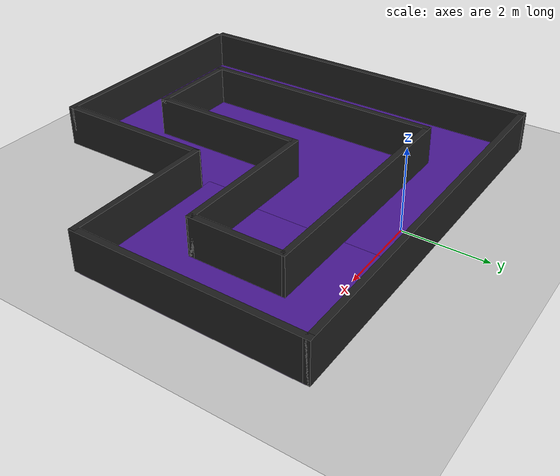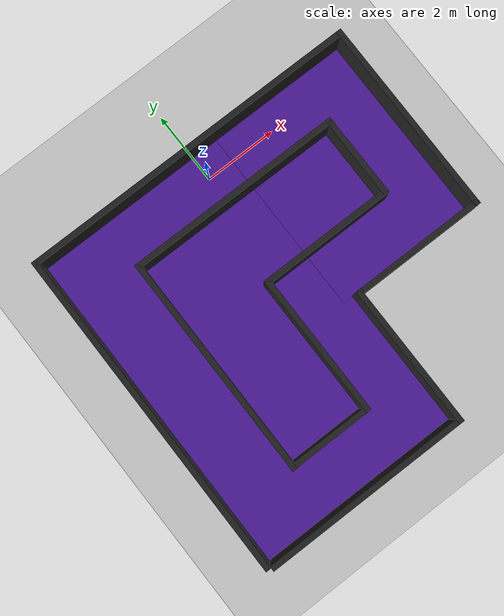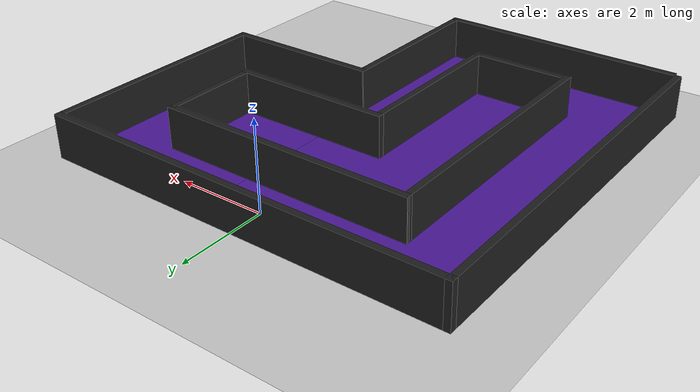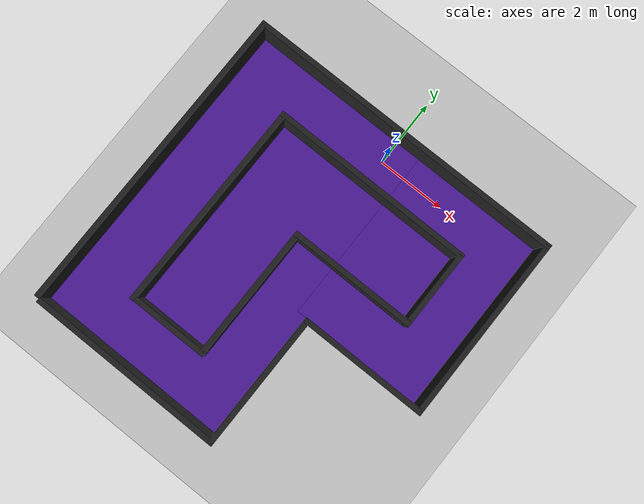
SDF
<sdf version="1.4">
 <world name="default">
  <light type="directional" name="sun">
   <cast_shadows>false</cast_shadows>
   <pose>-6 2 5 -0.5 -0.5 0</pose>
   <diffuse>0.8 0.8 0.8 1</diffuse>
   <specular>0.9 0.9 0.9 1</specular>
   <attenuation>
    <range>1000</range>
    <constant>0.9</constant>
    <linear>0.01</linear>
    <quadratic>0.001</quadratic>
   </attenuation>
   <direction>0 0 -1</direction>
  </light>
  <light type="directional" name="sun2">
   <cast_shadows>false</cast_shadows>
   <pose>-3 -7 5 0.5 0.5 0</pose>
   <diffuse>0.8 0.8 0.8 1</diffuse>
   <specular>0.9 0.9 0.9 1</specular>
   <attenuation>
    <range>1000</range>
    <constant>0.9</constant>
    <linear>0.01</linear>
    <quadratic>0.001</quadratic>
   </attenuation>
   <direction>0 0 -1</direction>
  </light>
  <model name="ground_plane">
   <static>1</static>
   <link name="link">
    <collision name="collision">
     <geometry><plane><normal>0 0 1</normal><size>100 100</size></plane></geometry>
     <surface><friction><ode><mu>100</mu><mu2>50</mu2></ode></friction></surface>
    </collision>
    <visual name="visual">
     <cast_shadows>0</cast_shadows>
     <geometry><plane><normal>0 0 1</normal><size>100 100</size></plane></geometry>
     <material>
      <script><uri>file://media/materials/scripts/gazebo.material</uri><name>Gazebo/Grey</name></script>
     </material>
    </visual>
    <velocity_decay><linear>0</linear><angular>0</angular></velocity_decay>
   </link>
  </model>
  <scene><ambient>0.4 0.4 0.4 1</ambient><background>0.7 0.7 0.7 1</background><shadows>0</shadows></scene>
  <physics type="ode">
   <max_step_size>0.01</max_step_size>
   <real_time_factor>1</real_time_factor>
   <real_time_update_rate>0</real_time_update_rate>
   <gravity>0 0 -9.8</gravity>
  </physics>
  <include><uri>model://Circuit_ql_2c</uri><pose>0 -3.85 0 0 0 1.567</pose></include>
 </world>
</sdf>
